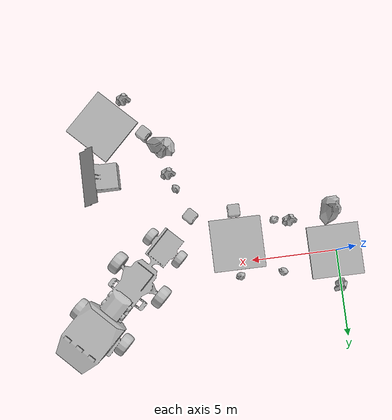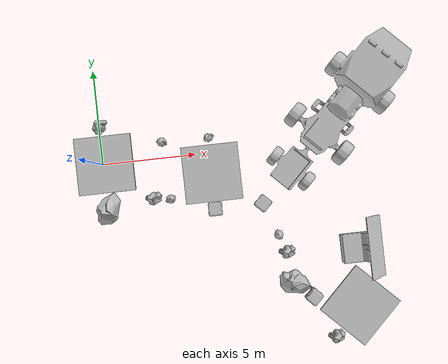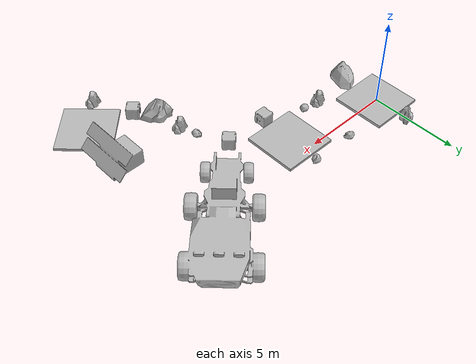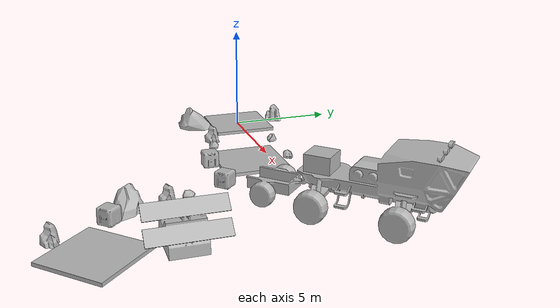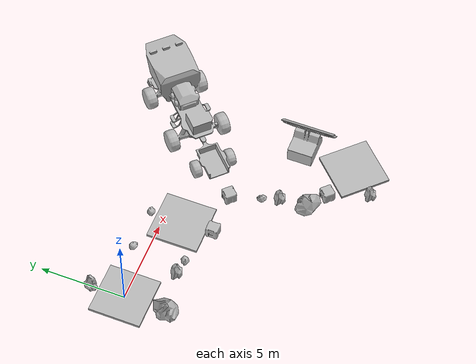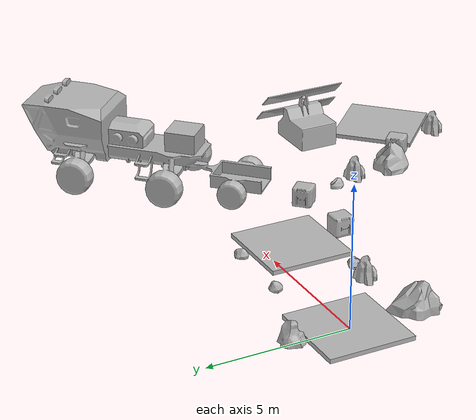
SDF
<sdf version="1.6">
 <world name="SRC_finals">
  <include>
   <name>walkway_1</name>
   <pose>0.09
      0
      -0.052151
      0
      0
      3.141592653589793</pose>
   <uri>model://walkway_finish_opposite</uri>
  </include>
  <include>
   <name>bling_1</name>
   <pose>0.08999999999999968
      -2.624
      0
      0
      0
      3.141592653589793</pose>
   <uri>model://mars_rock_3</uri>
  </include>
  <include>
   <name>bling_2</name>
   <pose>0.0900000000000003
      2.024
      0
      0
      0
      -2.4492935982947064e-16</pose>
   <uri>model://mars_rock_2</uri>
  </include>
  <include>
   <name>bling_3</name>
   <pose>3.2532027124746192
      0.8924427124746186
      0
      0
      0
      -0.7853981633974485</pose>
   <uri>model://mars_rock_1</uri>
  </include>
  <include>
   <name>bling_4</name>
   <pose>2.5060414016271593
      -2.0409183542126463
      0
      0
      0
      2.356194490192345</pose>
   <uri>model://mars_rock_2</uri>
  </include>
  <include>
   <name>bling_5</name>
   <pose>3.4539547922204332
      -2.2397649636193724
      0
      0
      0
      3.141592653589793</pose>
   <uri>model://mars_rock_1</uri>
  </include>
  <include>
   <name>walkway_4</name>
   <pose>5.739954792220433
      -1.0777649636193727
      -0.052151
      0
      0
      3.141592653589793</pose>
   <uri>model://walkway_finish_opposite</uri>
  </include>
  <include>
   <name>bling_6</name>
   <pose>5.739954792220433
      -3.001764963619373
      0
      0
      0
      3.141592653589793</pose>
   <uri>model://mars_crate</uri>
  </include>
  <include>
   <name>bling_7</name>
   <pose>5.739954792220433
      0.8462350363806274
      0
      0
      0
      -1.8369701987210297e-16</pose>
   <uri>model://mars_rock_1</uri>
  </include>
  <include>
   <pose>12.824300042088197
        1.5647454597200912
        0
        0
        0
        2.356194490192345</pose>
   <uri>model://mars_explorer</uri>
  </include>
  <include>
   <name>bling_8</name>
   <pose>8.281846079745815
      -2.97770850262229
      0
      0
      0
      2.356194490192345</pose>
   <uri>model://mars_crate</uri>
  </include>
  <include>
   <name>bling_9</name>
   <pose>9.288900365246533
      -5.650373972961378
      0
      0
      0
      2.356194490192345</pose>
   <uri>model://mars_rock_2</uri>
  </include>
  <include>
   <name>bling_10</name>
   <pose>8.9299408428266
      -4.768781522449238
      0
      0
      0
      1.5707963267948966</pose>
   <uri>model://mars_rock_1</uri>
  </include>
  <include>
   <pose>12.66022813790961
        -5.82485964228697
        0.2
        0
        0
        -1.5707963267948968</pose>
   <uri>model://solar_array</uri>
  </include>
  <include>
   <name>bling_11</name>
   <pose>9.307705806445973
      -7.3707363146696725
      0
      0
      0
      1.5707963267948966</pose>
   <uri>model://mars_rock_3</uri>
  </include>
  <include>
   <name>bling_12</name>
   <pose>10.437376006984561
      -8.181618087063157
      0
      0
      0
      2.356194490192345</pose>
   <uri>model://mars_crate</uri>
  </include>
  <include>
   <name>walkway_11</name>
   <pose>12.875480188515777
      -8.976406109116837
      -0.052151
      0
      0
      2.356194490192345</pose>
   <uri>model://walkway_finish_opposite</uri>
  </include>
  <include>
   <name>bling_13</name>
   <pose>11.444296063394205
      -10.407590234238409
      0
      0
      0
      2.356194490192345</pose>
   <uri>model://mars_rock_2</uri>
  </include>
 </world>
</sdf>
